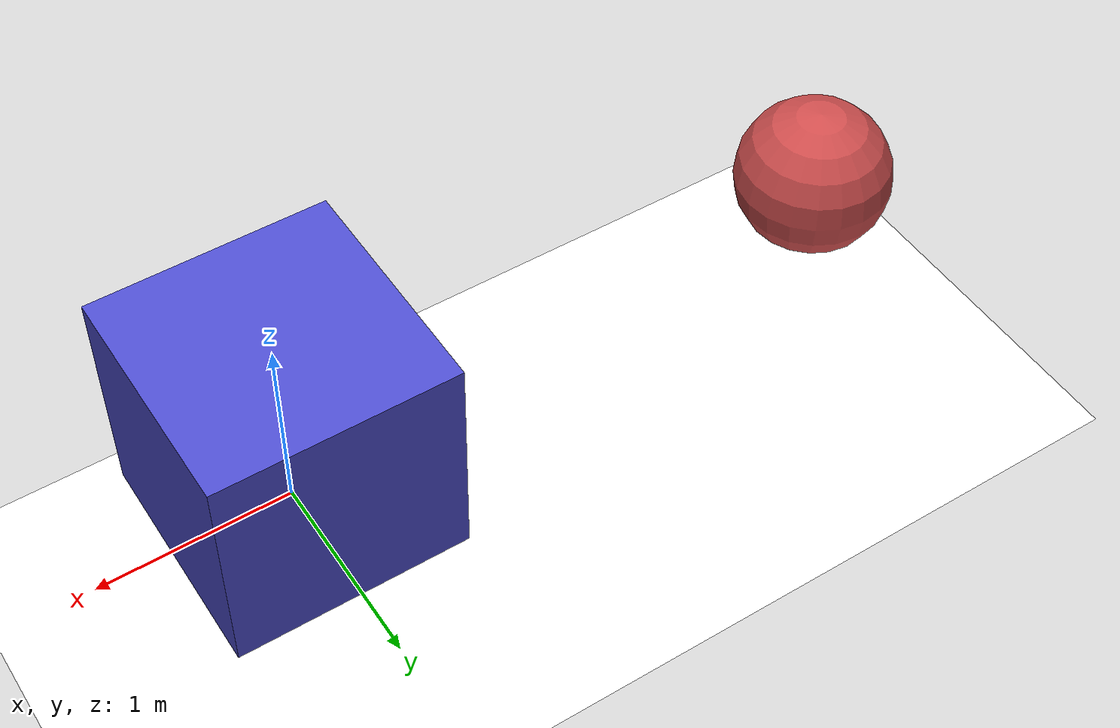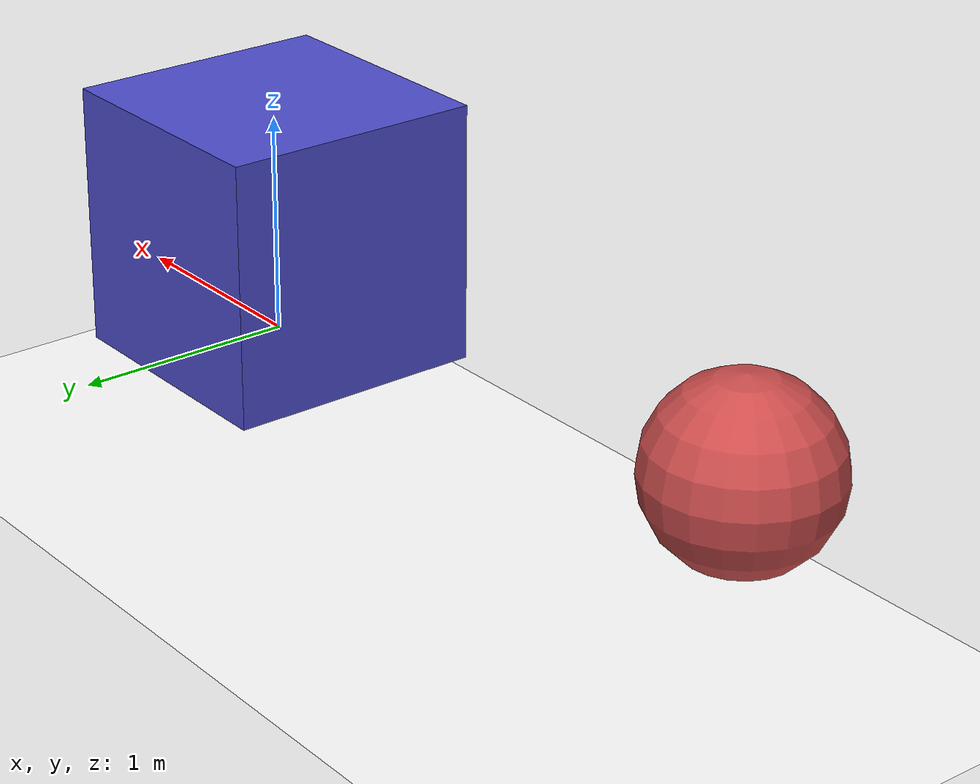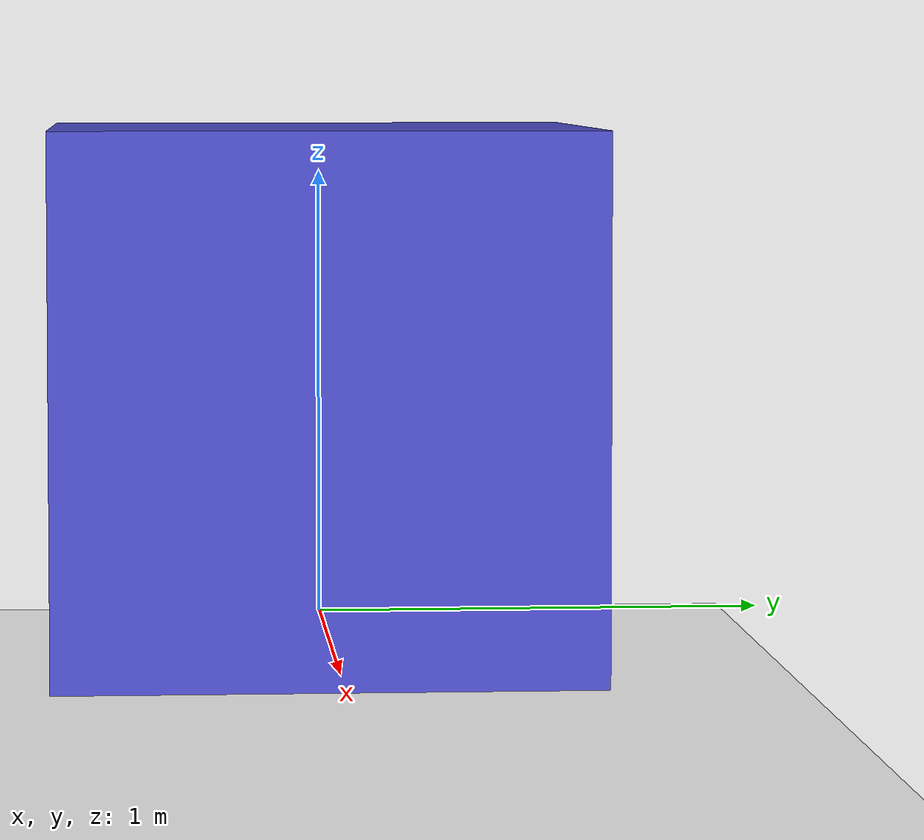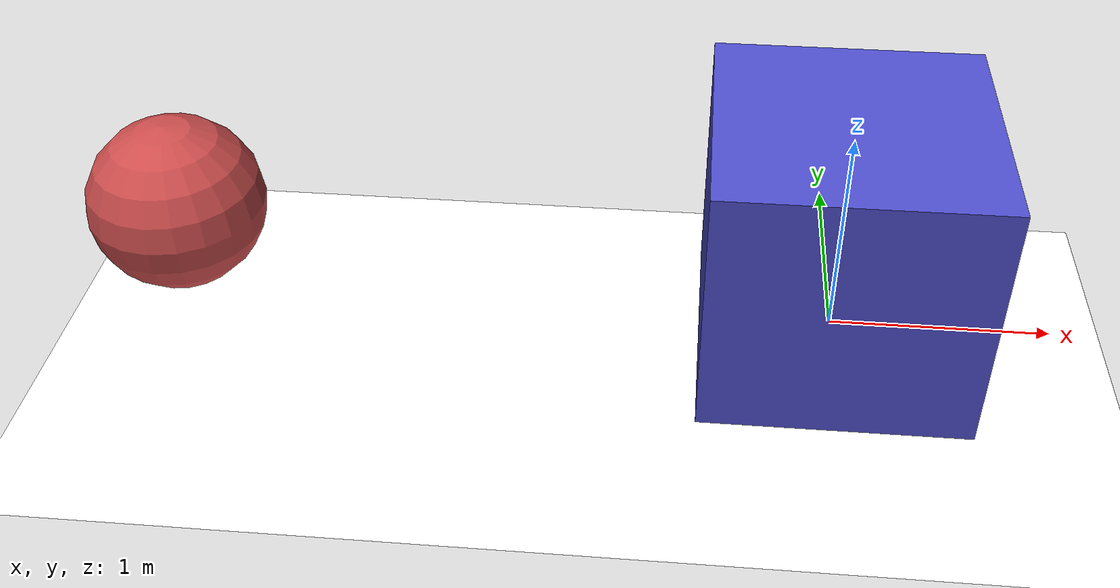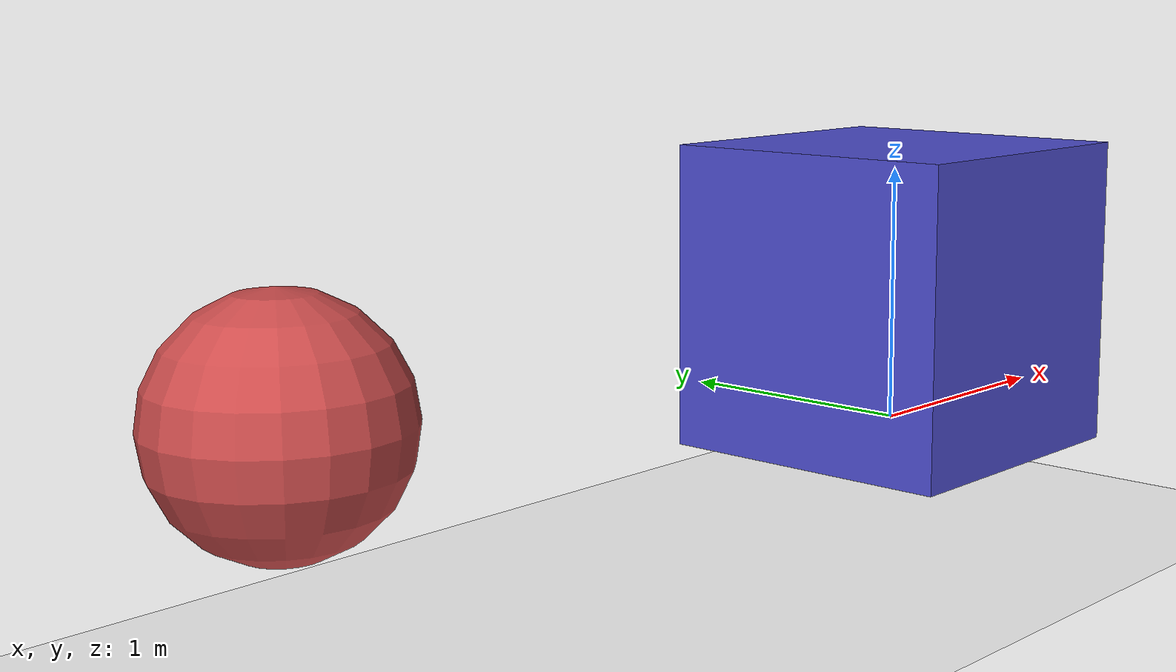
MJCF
<mujoco model="scene7_deformation">
  <compiler angle="radian"/>

  <option timestep="0.002" gravity="0 0 -9.81">
    <flag contact="disable"/>
  </option>

  <visual>
    <global offwidth="800" offheight="800"/>
    <quality shadowsize="4096"/>
  </visual>

  <asset>
    <texture name="white_skybox"
             type="skybox"
             builtin="flat"
             width="512"
             height="512"
             rgb1="1 1 1"
             rgb2="1 1 1"/>
    <material name="white_floor" rgba="1 1 1 1" reflectance="0"/>
  </asset>

  <worldbody>
    <light directional="true" pos="0 0 3" dir="0 0 -1" diffuse="0.8 0.8 0.8"/>
    <light directional="true" pos="2 2 3" dir="-0.5 -0.5 -1" diffuse="0.4 0.4 0.4"/>

    <geom name="floor" type="plane" size="5 5 0.1" material="white_floor" pos="0 0 -0.5"/>

    <!-- Target between cube and sphere -->
    <body name="target" pos="-1 0 0.5">
      <site name="target_site" size="0.01" rgba="1 0 0 0"/>
    </body>

    <!-- Rigid cube (fixed obstacle) -->
    <body name="cube" pos="0 0 0.5">
      <freejoint/>
      <geom name="cube_geom" type="box" size="0.6 0.6 0.6" rgba="0.3 0.3 0.8 1"/>
    </body>

    <!-- Deformable sphere -->
    <body name="sphere" pos="-3.0 0 0.5">
      <freejoint/>
      <geom name="sphere_geom" type="sphere" size="0.4" rgba="0.8 0.3 0.3 1" mass="1"/>
    </body>

    <!-- Scaled 1.5x for 800x800 square resolution — sphere travels from -3m to cube at 0m, target at (-1,0,0.5) -->
    <camera name="cam0" pos="4.5 0 2.25" mode="targetbody" target="target" fovy="50"/>
    <camera name="cam1" pos="0 4.5 2.25" mode="targetbody" target="target" fovy="50"/>
    <camera name="cam2" pos="-4.5 0 2.25" mode="targetbody" target="target" fovy="50"/>
    <camera name="cam3" pos="0 -4.5 2.25" mode="targetbody" target="target" fovy="50"/>
    <camera name="cam4" pos="3.75 3.75 3.75" mode="targetbody" target="target" fovy="50"/>
    <camera name="cam5" pos="-3.75 3.75 3.75" mode="targetbody" target="target" fovy="50"/>
    <camera name="cam6" pos="3.75 -3.75 3.75" mode="targetbody" target="target" fovy="50"/>
    <camera name="cam7" pos="-3.75 -3.75 3.75" mode="targetbody" target="target" fovy="50"/>
    <camera name="cam8" pos="3.0 0 1.05" mode="targetbody" target="target" fovy="55"/>
    <camera name="cam9" pos="-3.0 0 1.05" mode="targetbody" target="target" fovy="55"/>
    <camera name="cam10" pos="0 0 5.25" mode="targetbody" target="target" fovy="45"/>
    <camera name="cam11" pos="2.25 2.25 4.5" mode="targetbody" target="target" fovy="45"/>
  </worldbody>
</mujoco>
